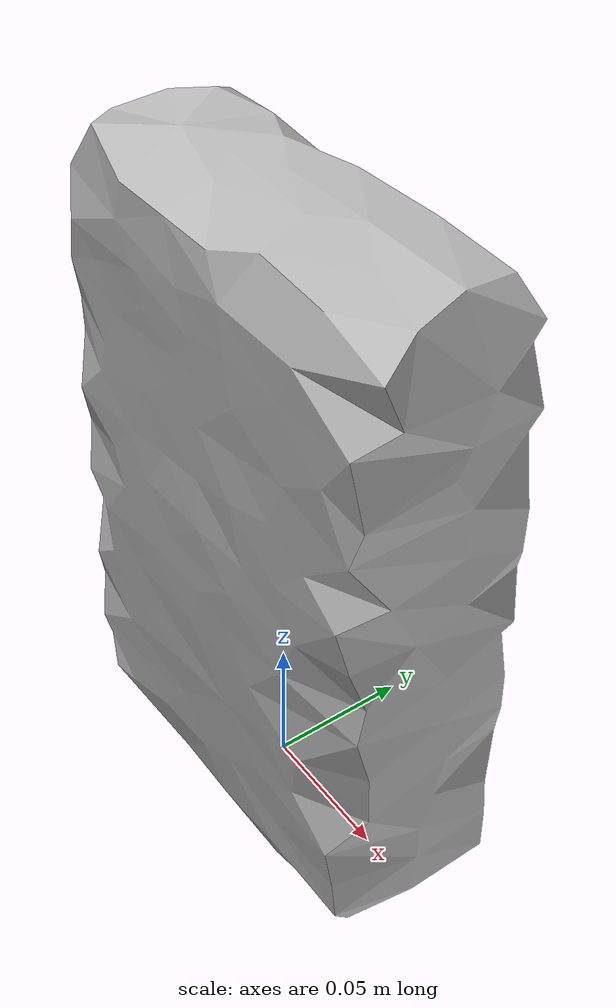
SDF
<?xml version="1.0" ?>
<sdf version="1.4">
  <model name="snacks">
    <link name="snacks_link">
      <inertial>
        <pose>0 0 0 0 0 0</pose>
        <mass>0.08</mass>
      </inertial>

      <visual name="snacks_visual">
        <pose>0 0 0 0 0 0</pose>
        <material>
          <script>
            <uri>model://snacks/materials/scripts</uri>
            <uri>model://snacks/materials/textures</uri>
            <name>snacks</name>
          </script>
        </material>
        <geometry>
          <mesh>
            <uri>model://snacks/meshes/snacks_aligned.dae</uri>
          </mesh>
        </geometry>
      </visual>

      <collision name="snacks_collision">
        <pose>0.0 0.0 0.117 0 0 0</pose>
        <geometry>
          <box>
            <size>0.165 0.06 0.235</size>
          </box>
        </geometry>
      </collision>

    </link>
  </model>
</sdf>
